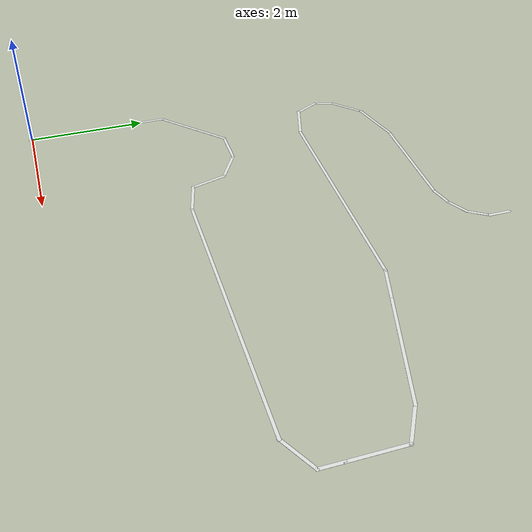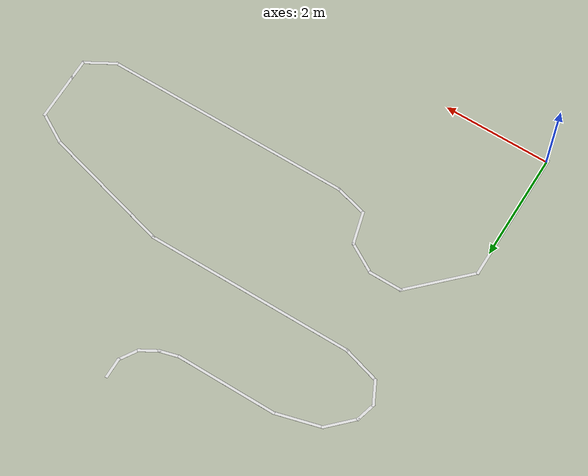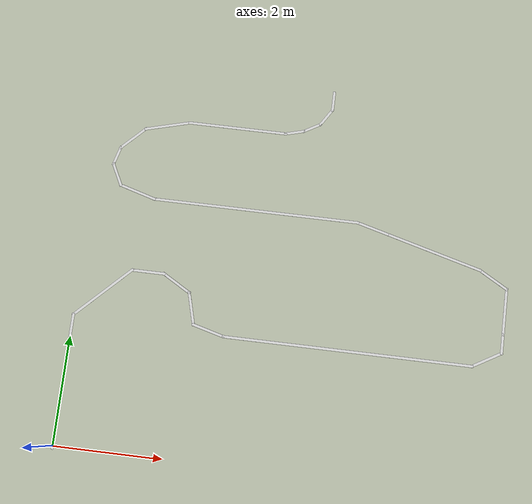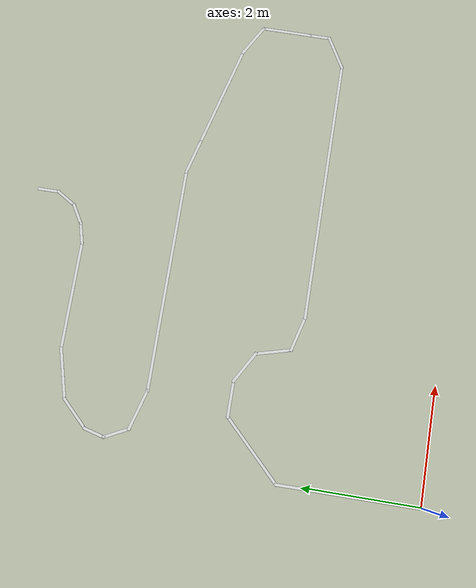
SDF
<?xml version='1.0'?>
<sdf version='1.7'>
  <model name='path'>
    <pose>3.95386 3.60951 0 0 -0 0</pose>
    <link name='Line_11'>
      <collision name='Line_11_Collision'>
        <geometry>
          <plane>
            <normal>0 0 1</normal>
            <size>2.5 0.05 0</size>
          </plane>
        </geometry>
        <pose>0 0 0.0015 0 -0 0</pose>
      <surface>
          <friction>
            <ode>
             <mu>100</mu>      <surface>
          <friction>
            <ode>
             <mu>100</mu>
              <mu2>50</mu2>
            </ode>
          </friction>
        </surface>
              <mu2>50</mu2>
            </ode>
          </friction>
        </surface>
      </collision>
      <visual name='Line_11_Visual'>
        <pose>0 0 0.0015 0 -0 0</pose>
        <geometry>
          <plane>
            <normal>0 0 1</normal>
            <size>2.5 0.05 0.001</size>
          </plane>
        </geometry>
        <material>
          <script>
            <uri>file://media/materials/scripts/gazebo.material</uri>
            <name>Gazebo/White</name>
          </script>
        </material>
      </visual>
      <pose>-3.96386 -2.42451 0 0 -0 -1.5708</pose>
    </link>
    <link name='Line_13'>
      <collision name='Line_13_Collision'>
        <geometry>
          <plane>
            <normal>0 0 1</normal>
            <size>1.40411 0.05 0.001</size>
          </plane>
        </geometry>
        <pose>0 0 0.0005 0 -0 0</pose>
      <surface>
          <friction>
            <ode>
             <mu>100</mu>
              <mu2>50</mu2>
            </ode>
          </friction>
        </surface>
      </collision>
      <visual name='Line_13_Visual'>
        <pose>0 0 0.0005 0 -0 0</pose>
        <geometry>
          <box>
            <size>1.40411 0.05 0.001</size>
          </box>
        </geometry>
        <material>
          <script>
            <uri>file://media/materials/scripts/gazebo.material</uri>
            <name>Gazebo/White</name>
          </script>
        </material>
      </visual>
      <pose>-3.48386 -0.722009 0 0 -0 0.782787</pose>
    </link>
    <link name='Line_14'>
      <collision name='Line_14_Collision'>
        <geometry>
          <plane>
            <normal>0 0 1</normal>
            <size>0.65 0.05 0.001</size>
          </plane>
        </geometry>
        <pose>0 0 0.0005 0 -0 0</pose>
      <surface>
          <friction>
            <ode>
             <mu>100</mu>
              <mu2>50</mu2>
            </ode>
          </friction>
        </surface>
      </collision>
      <visual name='Line_14_Visual'>
        <pose>0 0 0.0005 0 -0 0</pose>
        <geometry>
          <box>
            <size>0.65 0.05 0.001</size>
          </box>
        </geometry>
        <material>
          <script>
            <uri>file://media/materials/scripts/gazebo.material</uri>
            <name>Gazebo/White</name>
          </script>
        </material>
      </visual>
      <pose>-2.70386 -0.244509 0 0 -0 0</pose>
    </link>
    <link name='Line_20'>
      <collision name='Line_20_Collision'>
        <geometry>
          <plane>
            <normal>0 0 1</normal>
            <size>0.645529 0.05 0.001</size>
          </plane>
        </geometry>
        <pose>0 0 0.0005 0 -0 0</pose>
      <surface>
          <friction>
            <ode>
             <mu>100</mu>
              <mu2>50</mu2>
            </ode>
          </friction>
        </surface>
      </collision>
      <visual name='Line_20_Visual'>
        <pose>0 0 0.0005 0 -0 0</pose>
        <geometry>
          <box>
            <size>0.645529 0.05 0.001</size>
          </box>
        </geometry>
        <material>
          <script>
            <uri>file://media/materials/scripts/gazebo.material</uri>
            <name>Gazebo/White</name>
          </script>
        </material>
      </visual>
      <pose>-2.14686 -0.394509 0 0 -0 -0.528316</pose>
    </link>
    <link name='Line_21'>
      <collision name='Line_21_Collision'>
        <geometry>
          <plane>
            <normal>0 0 1</normal>
            <size>0.650446 0.05 0.001</size>
          </plane>
        </geometry>
        <pose>0 0 0.0005 0 -0 0</pose>
      <surface>
          <friction>
            <ode>
             <mu>100</mu>
              <mu2>50</mu2>
            </ode>
          </friction>
        </surface>
      </collision>
      <visual name='Line_21_Visual'>
        <pose>0 0 0.0005 0 -0 0</pose>
        <geometry>
          <box>
            <size>0.650446 0.05 0.001</size>
          </box>
        </geometry>
        <material>
          <script>
            <uri>file://media/materials/scripts/gazebo.material</uri>
            <name>Gazebo/White</name>
          </script>
        </material>
      </visual>
      <pose>-1.81186 -0.834509 0 0 -0 -1.30805</pose>
    </link>
    <link name='Line_22'>
      <collision name='Line_22_Collision'>
        <geometry>
          <plane>
            <normal>0 0 1</normal>
            <size>0.649508 0.05 0.001</size>
          </plane>
        </geometry>
        <pose>0 0 0.0005 0 -0 0</pose>
      <surface>
          <friction>
            <ode>
             <mu>100</mu>
              <mu2>50</mu2>
            </ode>
          </friction>
        </surface>
      </collision>
      <visual name='Line_22_Visual'>
        <pose>0 0 0.0005 0 -0 0</pose>
        <geometry>
          <box>
            <size>0.649508 0.05 0.001</size>
          </box>
        </geometry>
        <material>
          <script>
            <uri>file://media/materials/scripts/gazebo.material</uri>
            <name>Gazebo/White</name>
          </script>
        </material>
      </visual>
      <pose>-1.44436 -1.20201 0 0 -0 -0.26157</pose>
    </link>
    <link name='Line_23'>
      <collision name='Line_23_Collision'>
        <geometry>
          <plane>
            <normal>0 0 1</normal>
            <size>4.65006 0.05 0.001</size>
          </plane>
        </geometry>
        <pose>0 0 0.0005 0 -0 0</pose>
      <surface>
          <friction>
            <ode>
             <mu>100</mu>
              <mu2>50</mu2>
            </ode>
          </friction>
        </surface>
      </collision>
      <visual name='Line_23_Visual'>
        <pose>0 0 0.0005 0 -0 0</pose>
        <geometry>
          <box>
            <size>4.65006 0.05 0.001</size>
          </box>
        </geometry>
        <material>
          <script>
            <uri>file://media/materials/scripts/gazebo.material</uri>
            <name>Gazebo/White</name>
          </script>
        </material>
      </visual>
      <pose>1.14514 -1.27951 0 0 -0 0</pose>
    </link>
    <link name='Line_24'>
      <collision name='Line_24_Collision'>
        <geometry>
          <plane>
            <normal>0 0 1</normal>
            <size>0.649922 0.05 0.001</size>
          </plane>
        </geometry>
        <pose>0 0 0.0005 0 -0 0</pose>
      <surface>
          <friction>
            <ode>
             <mu>100</mu>
              <mu2>50</mu2>
            </ode>
          </friction>
        </surface>
      </collision>
      <visual name='Line_24_Visual'>
        <pose>0 0 0.0005 0 -0 0</pose>
        <geometry>
          <box>
            <size>0.649922 0.05 0.001</size>
          </box>
        </geometry>
        <material>
          <script>
            <uri>file://media/materials/scripts/gazebo.material</uri>
            <name>Gazebo/White</name>
          </script>
        </material>
      </visual>
      <pose>3.70514 -1.12951 0 0 -0 0.523278</pose>
    </link>
    <link name='Line_25'>
      <collision name='Line_25_Collision'>
        <geometry>
          <plane>
            <normal>0 0 1</normal>
            <size>0.399747 0.05 0.001</size>
          </plane>
        </geometry>
        <pose>0 0 0.0005 0 -0 0</pose>
      <surface>
          <friction>
            <ode>
             <mu>100</mu>
              <mu2>50</mu2>
            </ode>
          </friction>
        </surface>
      </collision>
      <visual name='Line_25_Visual'>
        <pose>0 0 0.0005 0 -0 0</pose>
        <geometry>
          <box>
            <size>0.399747 0.05 0.001</size>
          </box>
        </geometry>
        <material>
          <script>
            <uri>file://media/materials/scripts/gazebo.material</uri>
            <name>Gazebo/White</name>
          </script>
        </material>
      </visual>
      <pose>3.96514 -0.804509 0 0 -0 1.5708</pose>
    </link>
    <link name='Line_26'>
      <collision name='Line_26_Collision'>
        <geometry>
          <plane>
            <normal>0 0 1</normal>
            <size>0.899747 0.05 0.001</size>
          </plane>
        </geometry>
        <pose>0 0 0.0005 0 -0 0</pose>
      <surface>
          <friction>
            <ode>
             <mu>100</mu>
              <mu2>50</mu2>
            </ode>
          </friction>
        </surface>
      </collision>
      <visual name='Line_26_Visual'>
        <pose>0 0 0.0005 0 -0 0</pose>
        <geometry>
          <box>
            <size>0.899747 0.05 0.001</size>
          </box>
        </geometry>
        <material>
          <script>
            <uri>file://media/materials/scripts/gazebo.material</uri>
            <name>Gazebo/White</name>
          </script>
        </material>
      </visual>
      <pose>3.96514 -0.204509 0 0 -0 1.5708</pose>
    </link>
    <link name='Line_27'>
      <collision name='Line_27_Collision'>
        <geometry>
          <plane>
            <normal>0 0 1</normal>
            <size>0.650158 0.05 0.001</size>
          </plane>
        </geometry>
        <pose>0 0 0.0005 0 -0 0</pose>
      <surface>
          <friction>
            <ode>
             <mu>100</mu>
              <mu2>50</mu2>
            </ode>
          </friction>
        </surface>
      </collision>
      <visual name='Line_27_Visual'>
        <pose>0 0 0.0005 0 -0 0</pose>
        <geometry>
          <box>
            <size>0.650158 0.05 0.001</size>
          </box>
        </geometry>
        <material>
          <script>
            <uri>file://media/materials/scripts/gazebo.material</uri>
            <name>Gazebo/White</name>
          </script>
        </material>
      </visual>
      <pose>3.70514 0.370491 0 0 -0 2.61831</pose>
    </link>
    <link name='Line_28'>
      <collision name='Line_28_Collision'>
        <geometry>
          <plane>
            <normal>0 0 1</normal>
            <size>1.89988 0.05 0.001</size>
          </plane>
        </geometry>
        <pose>0 0 0.0005 0 -0 0</pose>
      <surface>
          <friction>
            <ode>
             <mu>100</mu>
              <mu2>50</mu2>
            </ode>
          </friction>
        </surface>
      </collision>
      <visual name='Line_28_Visual'>
        <pose>0 0 0.0005 0 -0 0</pose>
        <geometry>
          <box>
            <size>1.89988 0.05 0.001</size>
          </box>
        </geometry>
        <material>
          <script>
            <uri>file://media/materials/scripts/gazebo.material</uri>
            <name>Gazebo/White</name>
          </script>
        </material>
      </visual>
      <pose>2.55164 0.759991 0 0 -0 2.8797</pose>
    </link>
    <link name='Line_29'>
      <collision name='Line_29_Collision'>
        <geometry>
          <plane>
            <normal>0 0 1</normal>
            <size>0.649797 0.05 0.001</size>
          </plane>
        </geometry>
        <pose>0 0 0.0005 0 -0 0</pose>
      <surface>
          <friction>
            <ode>
             <mu>100</mu>
              <mu2>50</mu2>
            </ode>
          </friction>
        </surface>
      </collision>
      <visual name='Line_29_Visual'>
        <pose>0 0 0.0005 0 -0 0</pose>
        <geometry>
          <box>
            <size>0.649797 0.05 0.001</size>
          </box>
        </geometry>
        <material>
          <script>
            <uri>file://media/materials/scripts/gazebo.material</uri>
            <name>Gazebo/White</name>
          </script>
        </material>
      </visual>
      <pose>1.36864 1.07699 0 0 -0 2.88002</pose>
    </link>
    <link name='Line_30'>
      <collision name='Line_30_Collision'>
        <geometry>
          <plane>
            <normal>0 0 1</normal>
            <size>3.92046 0.05 0.001</size>
          </plane>
        </geometry>
        <pose>0 0 0.0005 0 -0 0</pose>
      <surface>
          <friction>
            <ode>
             <mu>100</mu>
              <mu2>50</mu2>
            </ode>
          </friction>
        </surface>
      </collision>
      <visual name='Line_30_Visual'>
        <pose>0 0 0.0005 0 -0 0</pose>
        <geometry>
          <box>
            <size>3.92046 0.05 0.001</size>
          </box>
        </geometry>
        <material>
          <script>
            <uri>file://media/materials/scripts/gazebo.material</uri>
            <name>Gazebo/White</name>
          </script>
        </material>
      </visual>
      <pose>-0.855858 1.15449 0 0 -0 3.14159</pose>
    </link>
    <link name='Line_31'>
      <collision name='Line_31_Collision'>
        <geometry>
          <plane>
            <normal>0 0 1</normal>
            <size>0.747857 0.05 0.001</size>
          </plane>
        </geometry>
        <pose>0 0 0.0005 0 -0 0</pose>
      <surface>
          <friction>
            <ode>
             <mu>100</mu>
              <mu2>50</mu2>
            </ode>
          </friction>
        </surface>
      </collision>
      <visual name='Line_31_Visual'>
        <pose>0 0 0.0005 0 -0 0</pose>
        <geometry>
          <box>
            <size>0.747857 0.05 0.001</size>
          </box>
        </geometry>
        <material>
          <script>
            <uri>file://media/materials/scripts/gazebo.material</uri>
            <name>Gazebo/White</name>
          </script>
        </material>
      </visual>
      <pose>-3.12586 1.25199 0 0 -0 2.85837</pose>
    </link>
    <link name='Line_32'>
      <collision name='Line_32_Collision'>
        <geometry>
          <plane>
            <normal>0 0 1</normal>
            <size>0.489276 0.05 0.001</size>
          </plane>
        </geometry>
        <pose>0 0 0.0005 0 -0 0</pose>
      <surface>
          <friction>
            <ode>
             <mu>100</mu>
              <mu2>50</mu2>
            </ode>
          </friction>
        </surface>
      </collision>
      <visual name='Line_32_Visual'>
        <pose>0 0 0.0005 0 -0 0</pose>
        <geometry>
          <box>
            <size>0.489276 0.05 0.001</size>
          </box>
        </geometry>
        <material>
          <script>
            <uri>file://media/materials/scripts/gazebo.material</uri>
            <name>Gazebo/White</name>
          </script>
        </material>
      </visual>
      <pose>-3.55986 1.54549 0 0 -0 2.03852</pose>
    </link>
    <link name='Line_35'>
      <collision name='Line_35_Collision'>
        <geometry>
          <plane>
            <normal>0 0 1</normal>
            <size>0.400442 0.05 0.001</size>
          </plane>
        </geometry>
        <pose>0 0 0.0005 0 -0 0</pose>
      <surface>
          <friction>
            <ode>
             <mu>100</mu>
              <mu2>50</mu2>
            </ode>
          </friction>
        </surface>
      </collision>
      <visual name='Line_35_Visual'>
        <pose>0 0 0.0005 0 -0 0</pose>
        <geometry>
          <box>
            <size>0.400442 0.05 0.001</size>
          </box>
        </geometry>
        <material>
          <script>
            <uri>file://media/materials/scripts/gazebo.material</uri>
            <name>Gazebo/White</name>
          </script>
        </material>
      </visual>
      <pose>-3.61336 1.91049 0 0 -0 1.3078</pose>
    </link>
    <link name='Line_36'>
      <collision name='Line_36_Collision'>
        <geometry>
          <plane>
            <normal>0 0 1</normal>
            <size>0.650309 0.05 0.001</size>
          </plane>
        </geometry>
        <pose>0 0 0.0005 0 -0 0</pose>
      <surface>
          <friction>
            <ode>
             <mu>100</mu>
              <mu2>50</mu2>
            </ode>
          </friction>
        </surface>
      </collision>
      <visual name='Line_36_Visual'>
        <pose>0 0 0.0005 0 -0 0</pose>
        <geometry>
          <box>
            <size>0.650309 0.05 0.001</size>
          </box>
        </geometry>
        <material>
          <script>
            <uri>file://media/materials/scripts/gazebo.material</uri>
            <name>Gazebo/White</name>
          </script>
        </material>
      </visual>
      <pose>-3.35586 2.29199 0 0 -0 0.786576</pose>
    </link>
    <link name='Line_37'>
      <collision name='Line_37_Collision'>
        <geometry>
          <plane>
            <normal>0 0 1</normal>
            <size>0.900194 0.05 0.001</size>
          </plane>
        </geometry>
        <pose>0 0 0.0005 0 -0 0</pose>
      <surface>
          <friction>
            <ode>
             <mu>100</mu>
              <mu2>50</mu2>
            </ode>
          </friction>
        </surface>
      </collision>
      <visual name='Line_37_Visual'>
        <pose>0 0 0.0005 0 -0 0</pose>
        <geometry>
          <box>
            <size>0.900194 0.05 0.001</size>
          </box>
        </geometry>
        <material>
          <script>
            <uri>file://media/materials/scripts/gazebo.material</uri>
            <name>Gazebo/White</name>
          </script>
        </material>
      </visual>
      <pose>-2.73336 2.61449 0 0 -0 0.261815</pose>
    </link>
    <link name='Line_38'>
      <collision name='Line_38_Collision'>
        <geometry>
          <plane>
            <normal>0 0 1</normal>
            <size>1.90032 0.05 0.001</size>
          </plane>
        </geometry>
        <pose>0 0 0.0005 0 -0 0</pose>
      <surface>
          <friction>
            <ode>
             <mu>100</mu>
              <mu2>50</mu2>
            </ode>
          </friction>
        </surface>
      </collision>
      <visual name='Line_38_Visual'>
        <pose>0 0 0.0005 0 -0 0</pose>
        <geometry>
          <box>
            <size>1.90032 0.05 0.001</size>
          </box>
        </geometry>
        <material>
          <script>
            <uri>file://media/materials/scripts/gazebo.material</uri>
            <name>Gazebo/White</name>
          </script>
        </material>
      </visual>
      <pose>-1.39786 2.72449 0 0 -0 0</pose>
    </link>
    <link name='Line_39'>
      <collision name='Line_39_Collision'>
        <geometry>
          <plane>
            <normal>0 0 1</normal>
            <size>0.400228 0.05 0.001</size>
          </plane>
        </geometry>
        <pose>0 0 0.0005 0 -0 0</pose>
      <surface>
          <friction>
            <ode>
             <mu>100</mu>
              <mu2>50</mu2>
            </ode>
          </friction>
        </surface>
      </collision>
      <visual name='Line_39_Visual'>
        <pose>0 0 0.0005 0 -0 0</pose>
        <geometry>
          <box>
            <size>0.400228 0.05 0.001</size>
          </box>
        </geometry>
        <material>
          <script>
            <uri>file://media/materials/scripts/gazebo.material</uri>
            <name>Gazebo/White</name>
          </script>
        </material>
      </visual>
      <pose>-0.303858 2.76949 0 0 -0 0.260234</pose>
    </link>
    <link name='Line_40'>
      <collision name='Line_40_Collision'>
        <geometry>
          <plane>
            <normal>0 0 1</normal>
            <size>0.400475 0.05 0.001</size>
          </plane>
        </geometry>
        <pose>0 0 0.0005 0 -0 0</pose>
      <surface>
          <friction>
            <ode>
             <mu>100</mu>
              <mu2>50</mu2>
            </ode>
          </friction>
        </surface>
      </collision>
      <visual name='Line_40_Visual'>
        <pose>0 0 0.0005 0 -0 0</pose>
        <geometry>
          <box>
            <size>0.400475 0.05 0.001</size>
          </box>
        </geometry>
        <material>
          <script>
            <uri>file://media/materials/scripts/gazebo.material</uri>
            <name>Gazebo/White</name>
          </script>
        </material>
      </visual>
      <pose>0.017142 2.90199 0 0 -0 0.522329</pose>
    </link>
    <link name='Line_41'>
      <collision name='Line_41_Collision'>
        <geometry>
          <plane>
            <normal>0 0 1</normal>
            <size>0.416231 0.05 0.001</size>
          </plane>
        </geometry>
        <pose>0 0 0.0005 0 -0 0</pose>
      <surface>
          <friction>
            <ode>
             <mu>100</mu>
              <mu2>50</mu2>
            </ode>
          </friction>
        </surface>
      </collision>
      <visual name='Line_41_Visual'>
        <pose>0 0 0.0005 0 -0 0</pose>
        <geometry>
          <box>
            <size>0.416231 0.05 0.001</size>
          </box>
        </geometry>
        <material>
          <script>
            <uri>file://media/materials/scripts/gazebo.material</uri>
            <name>Gazebo/White</name>
          </script>
        </material>
      </visual>
      <pose>0.266642 3.14449 0 0 -0 1.0093</pose>
    </link>
    <link name='Line_42'>
      <collision name='Line_42_Collision'>
        <geometry>
          <plane>
            <normal>0 0 1</normal>
            <size>0.400038 0.05 0.001</size>
          </plane>
        </geometry>
        <pose>0 0 0.0005 0 -0 0</pose>
      <surface>
          <friction>
            <ode>
             <mu>100</mu>
              <mu2>50</mu2>
            </ode>
          </friction>
        </surface>
      </collision>
      <visual name='Line_42_Visual'>
        <pose>0 0 0.0005 0 -0 0</pose>
        <geometry>
          <box>
            <size>0.400038 0.05 0.001</size>
          </box>
        </geometry>
        <material>
          <script>
            <uri>file://media/materials/scripts/gazebo.material</uri>
            <name>Gazebo/White</name>
          </script>
        </material>
      </visual>
      <pose>0.364142 3.47449 0 0 -0 1.5708</pose>
    </link>
    <static>1</static>
  </model>
</sdf>
